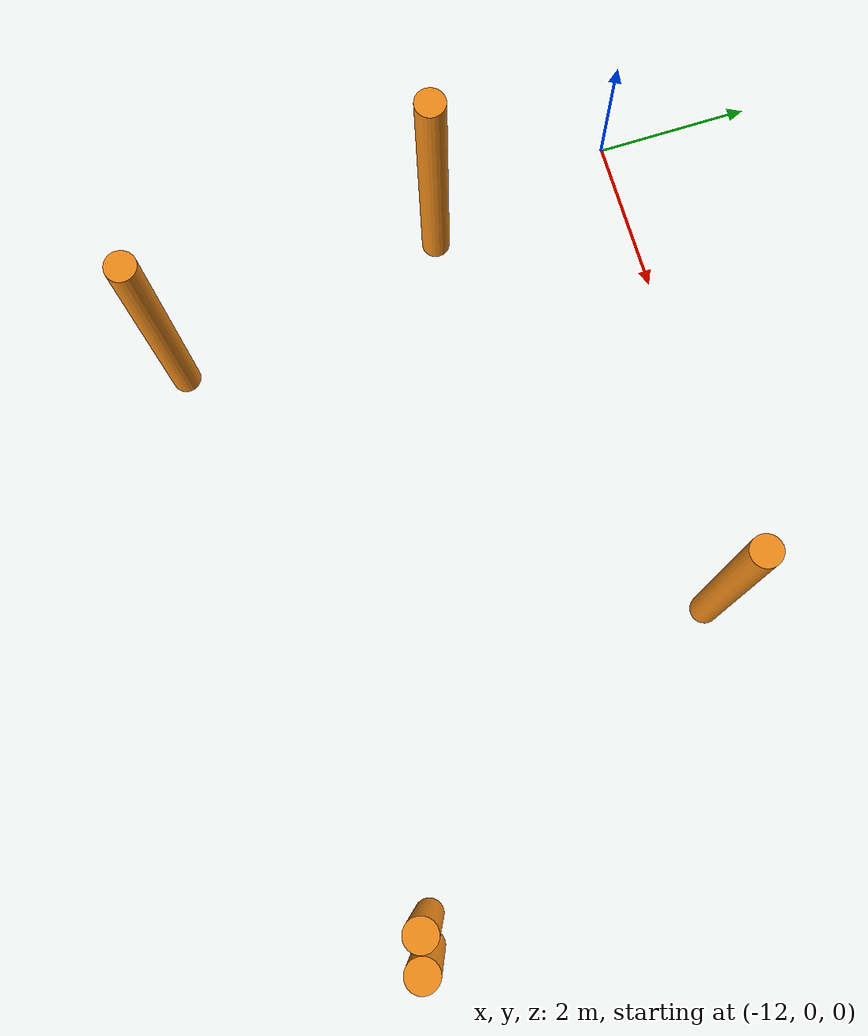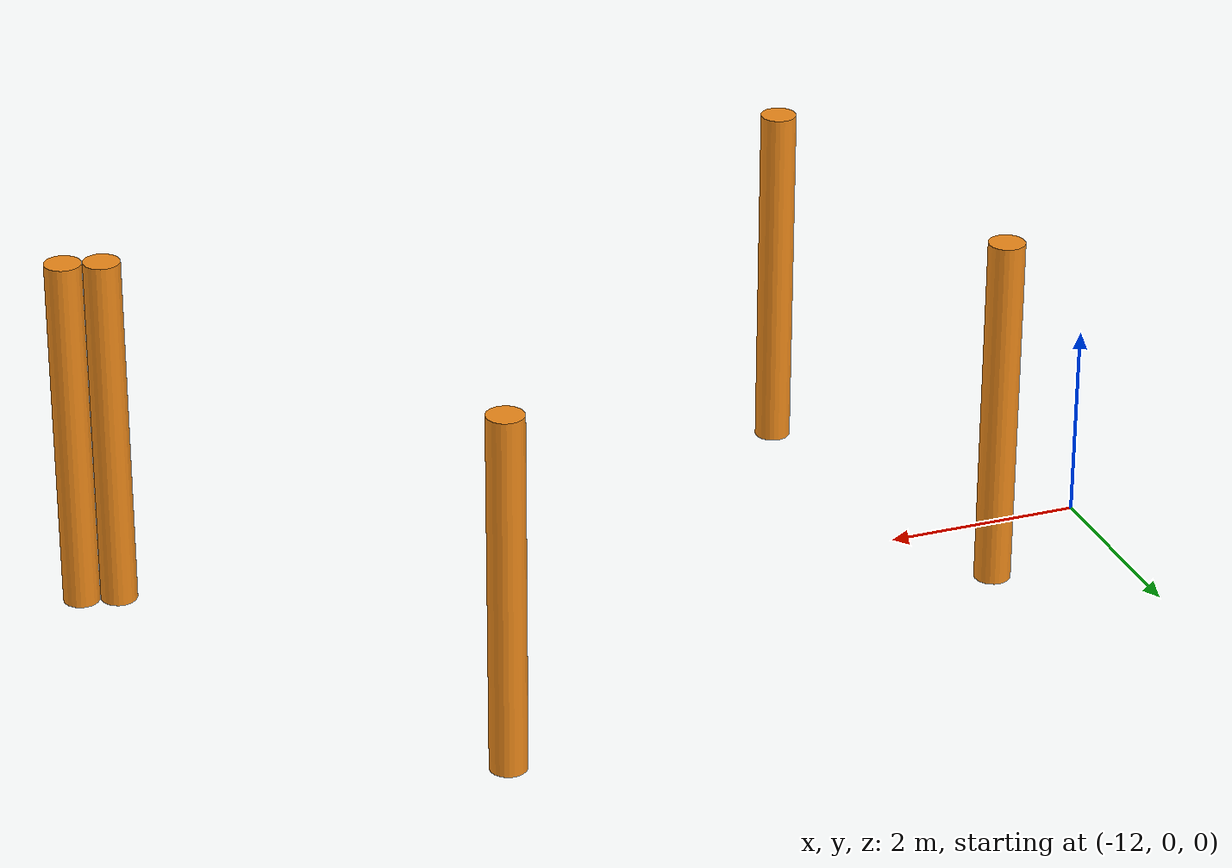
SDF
<sdf version="1.6">
 <model name="Skog">
  <link name="link_1_clone_10">
   <inertial>
    <mass>1</mass>
    <inertia><ixx>0.145833</ixx><ixy>0</ixy><ixz>0</ixz><iyy>0.145833</iyy><iyz>0</iyz><izz>0.125</izz></inertia>
   </inertial>
   <pose>-5.94594 -0.285564 0 0 -0 0</pose>
   <visual name="visual">
    <geometry><cylinder><radius>0.2</radius><length>4</length></cylinder></geometry>
    <material>
     <lighting>1</lighting>
     <script><uri>file://media/materials/scripts/gazebo.material</uri><name>Gazebo/Orange</name></script>
     <shader type="vertex"><normal_map>__default__</normal_map></shader>
     <ambient>0.3 0.3 0.3 1</ambient>
     <diffuse>0.7 0.7 0.7 1</diffuse>
     <specular>0.01 0.01 0.01 1</specular>
     <emissive>0 0 0 1</emissive>
    </material>
   </visual>
   <collision name="collision">
    <geometry><cylinder><radius>0.2</radius><length>4</length></cylinder></geometry>
    <surface>
     <friction>
      <ode><mu>1</mu><mu2>1</mu2><fdir1>0 0 0</fdir1><slip1>0</slip1><slip2>0</slip2></ode>
      <torsional>
       <coefficient>1</coefficient>
       <patch_radius>0</patch_radius>
       <surface_radius>0</surface_radius>
       <use_patch_radius>1</use_patch_radius>
       <ode><slip>0</slip></ode>
      </torsional>
     </friction>
     <bounce><restitution_coefficient>0</restitution_coefficient><threshold>1e+06</threshold></bounce>
     <contact>
      <collide_without_contact>0</collide_without_contact>
      <collide_without_contact_bitmask>1</collide_without_contact_bitmask>
      <collide_bitmask>1</collide_bitmask>
      <ode>
       <soft_cfm>0</soft_cfm>
       <soft_erp>0.2</soft_erp>
       <kp>1e+13</kp>
       <kd>1</kd>
       <max_vel>0.01</max_vel>
       <min_depth>0</min_depth>
      </ode>
      <bullet>
       <split_impulse>1</split_impulse>
       <split_impulse_penetration_threshold>-0.01</split_impulse_penetration_threshold>
       <soft_cfm>0</soft_cfm>
       <soft_erp>0.2</soft_erp>
       <kp>1e+13</kp>
       <kd>1</kd>
      </bullet>
     </contact>
    </surface>
   </collision>
  </link>
  <link name="link_1_clone_18">
   <inertial>
    <mass>1</mass>
    <inertia><ixx>0.145833</ixx><ixy>0</ixy><ixz>0</ixz><iyy>0.145833</iyy><iyz>0</iyz><izz>0.125</izz></inertia>
   </inertial>
   <pose>-11.2928 -6.29957 0 0 -0 0</pose>
   <visual name="visual">
    <geometry><cylinder><radius>0.2</radius><length>4</length></cylinder></geometry>
    <material>
     <lighting>1</lighting>
     <script><uri>file://media/materials/scripts/gazebo.material</uri><name>Gazebo/Orange</name></script>
     <shader type="vertex"><normal_map>__default__</normal_map></shader>
     <ambient>0.3 0.3 0.3 1</ambient>
     <diffuse>0.7 0.7 0.7 1</diffuse>
     <specular>0.01 0.01 0.01 1</specular>
     <emissive>0 0 0 1</emissive>
    </material>
   </visual>
   <collision name="collision">
    <geometry><cylinder><radius>0.2</radius><length>4</length></cylinder></geometry>
    <surface>
     <friction>
      <ode><mu>1</mu><mu2>1</mu2><fdir1>0 0 0</fdir1><slip1>0</slip1><slip2>0</slip2></ode>
      <torsional>
       <coefficient>1</coefficient>
       <patch_radius>0</patch_radius>
       <surface_radius>0</surface_radius>
       <use_patch_radius>1</use_patch_radius>
       <ode><slip>0</slip></ode>
      </torsional>
     </friction>
     <bounce><restitution_coefficient>0</restitution_coefficient><threshold>1e+06</threshold></bounce>
     <contact>
      <collide_without_contact>0</collide_without_contact>
      <collide_without_contact_bitmask>1</collide_without_contact_bitmask>
      <collide_bitmask>1</collide_bitmask>
      <ode>
       <soft_cfm>0</soft_cfm>
       <soft_erp>0.2</soft_erp>
       <kp>1e+13</kp>
       <kd>1</kd>
       <max_vel>0.01</max_vel>
       <min_depth>0</min_depth>
      </ode>
      <bullet>
       <split_impulse>1</split_impulse>
       <split_impulse_penetration_threshold>-0.01</split_impulse_penetration_threshold>
       <soft_cfm>0</soft_cfm>
       <soft_erp>0.2</soft_erp>
       <kp>1e+13</kp>
       <kd>1</kd>
      </bullet>
     </contact>
    </surface>
   </collision>
  </link>
  <link name="link_1_clone_54">
   <inertial>
    <mass>1</mass>
    <inertia><ixx>0.145833</ixx><ixy>0</ixy><ixz>0</ixz><iyy>0.145833</iyy><iyz>0</iyz><izz>0.125</izz></inertia>
   </inertial>
   <pose>-12.2376 -2.27358 0 0 -0 0</pose>
   <visual name="visual">
    <geometry><cylinder><radius>0.2</radius><length>4</length></cylinder></geometry>
    <material>
     <lighting>1</lighting>
     <script><uri>file://media/materials/scripts/gazebo.material</uri><name>Gazebo/Orange</name></script>
     <shader type="vertex"><normal_map>__default__</normal_map></shader>
     <ambient>0.3 0.3 0.3 1</ambient>
     <diffuse>0.7 0.7 0.7 1</diffuse>
     <specular>0.01 0.01 0.01 1</specular>
     <emissive>0 0 0 1</emissive>
    </material>
   </visual>
   <collision name="collision">
    <geometry><cylinder><radius>0.2</radius><length>4</length></cylinder></geometry>
    <surface>
     <friction>
      <ode><mu>1</mu><mu2>1</mu2><fdir1>0 0 0</fdir1><slip1>0</slip1><slip2>0</slip2></ode>
      <torsional>
       <coefficient>1</coefficient>
       <patch_radius>0</patch_radius>
       <surface_radius>0</surface_radius>
       <use_patch_radius>1</use_patch_radius>
       <ode><slip>0</slip></ode>
      </torsional>
     </friction>
     <bounce><restitution_coefficient>0</restitution_coefficient><threshold>1e+06</threshold></bounce>
     <contact>
      <collide_without_contact>0</collide_without_contact>
      <collide_without_contact_bitmask>1</collide_without_contact_bitmask>
      <collide_bitmask>1</collide_bitmask>
      <ode>
       <soft_cfm>0</soft_cfm>
       <soft_erp>0.2</soft_erp>
       <kp>1e+13</kp>
       <kd>1</kd>
       <max_vel>0.01</max_vel>
       <min_depth>0</min_depth>
      </ode>
      <bullet>
       <split_impulse>1</split_impulse>
       <split_impulse_penetration_threshold>-0.01</split_impulse_penetration_threshold>
       <soft_cfm>0</soft_cfm>
       <soft_erp>0.2</soft_erp>
       <kp>1e+13</kp>
       <kd>1</kd>
      </bullet>
     </contact>
    </surface>
   </collision>
  </link>
  <link name="link_1_clone_75">
   <inertial>
    <mass>1</mass>
    <inertia><ixx>0.145833</ixx><ixy>0</ixy><ixz>0</ixz><iyy>0.145833</iyy><iyz>0</iyz><izz>0.125</izz></inertia>
   </inertial>
   <pose>-3.16188 -5.1017 0 0 -0 0</pose>
   <visual name="visual">
    <geometry><cylinder><radius>0.2</radius><length>4</length></cylinder></geometry>
    <material>
     <lighting>1</lighting>
     <script><uri>file://media/materials/scripts/gazebo.material</uri><name>Gazebo/Orange</name></script>
     <shader type="vertex"><normal_map>__default__</normal_map></shader>
     <ambient>0.3 0.3 0.3 1</ambient>
     <diffuse>0.7 0.7 0.7 1</diffuse>
     <specular>0.01 0.01 0.01 1</specular>
     <emissive>0 0 0 1</emissive>
    </material>
   </visual>
   <collision name="collision">
    <geometry><cylinder><radius>0.2</radius><length>4</length></cylinder></geometry>
    <surface>
     <friction>
      <ode><mu>1</mu><mu2>1</mu2><fdir1>0 0 0</fdir1><slip1>0</slip1><slip2>0</slip2></ode>
      <torsional>
       <coefficient>1</coefficient>
       <patch_radius>0</patch_radius>
       <surface_radius>0</surface_radius>
       <use_patch_radius>1</use_patch_radius>
       <ode><slip>0</slip></ode>
      </torsional>
     </friction>
     <bounce><restitution_coefficient>0</restitution_coefficient><threshold>1e+06</threshold></bounce>
     <contact>
      <collide_without_contact>0</collide_without_contact>
      <collide_without_contact_bitmask>1</collide_without_contact_bitmask>
      <collide_bitmask>1</collide_bitmask>
      <ode>
       <soft_cfm>0</soft_cfm>
       <soft_erp>0.2</soft_erp>
       <kp>1e+13</kp>
       <kd>1</kd>
       <max_vel>0.01</max_vel>
       <min_depth>0</min_depth>
      </ode>
      <bullet>
       <split_impulse>1</split_impulse>
       <split_impulse_penetration_threshold>-0.01</split_impulse_penetration_threshold>
       <soft_cfm>0</soft_cfm>
       <soft_erp>0.2</soft_erp>
       <kp>1e+13</kp>
       <kd>1</kd>
      </bullet>
     </contact>
    </surface>
   </collision>
  </link>
  <link name="link_1_clone_76">
   <inertial>
    <mass>1</mass>
    <inertia><ixx>0.145833</ixx><ixy>0</ixy><ixz>0</ixz><iyy>0.145833</iyy><iyz>0</iyz><izz>0.125</izz></inertia>
   </inertial>
   <pose>-2.77027 -5.1996 0 0 -0 0</pose>
   <visual name="visual">
    <geometry><cylinder><radius>0.2</radius><length>4</length></cylinder></geometry>
    <material>
     <lighting>1</lighting>
     <script><uri>file://media/materials/scripts/gazebo.material</uri><name>Gazebo/Orange</name></script>
     <shader type="vertex"><normal_map>__default__</normal_map></shader>
     <ambient>0.3 0.3 0.3 1</ambient>
     <diffuse>0.7 0.7 0.7 1</diffuse>
     <specular>0.01 0.01 0.01 1</specular>
     <emissive>0 0 0 1</emissive>
    </material>
   </visual>
   <collision name="collision">
    <geometry><cylinder><radius>0.2</radius><length>4</length></cylinder></geometry>
    <surface>
     <friction>
      <ode><mu>1</mu><mu2>1</mu2><fdir1>0 0 0</fdir1><slip1>0</slip1><slip2>0</slip2></ode>
      <torsional>
       <coefficient>1</coefficient>
       <patch_radius>0</patch_radius>
       <surface_radius>0</surface_radius>
       <use_patch_radius>1</use_patch_radius>
       <ode><slip>0</slip></ode>
      </torsional>
     </friction>
     <bounce><restitution_coefficient>0</restitution_coefficient><threshold>1e+06</threshold></bounce>
     <contact>
      <collide_without_contact>0</collide_without_contact>
      <collide_without_contact_bitmask>1</collide_without_contact_bitmask>
      <collide_bitmask>1</collide_bitmask>
      <ode>
       <soft_cfm>0</soft_cfm>
       <soft_erp>0.2</soft_erp>
       <kp>1e+13</kp>
       <kd>1</kd>
       <max_vel>0.01</max_vel>
       <min_depth>0</min_depth>
      </ode>
      <bullet>
       <split_impulse>1</split_impulse>
       <split_impulse_penetration_threshold>-0.01</split_impulse_penetration_threshold>
       <soft_cfm>0</soft_cfm>
       <soft_erp>0.2</soft_erp>
       <kp>1e+13</kp>
       <kd>1</kd>
      </bullet>
     </contact>
    </surface>
   </collision>
  </link>
  <static>0</static>
 </model>
</sdf>
